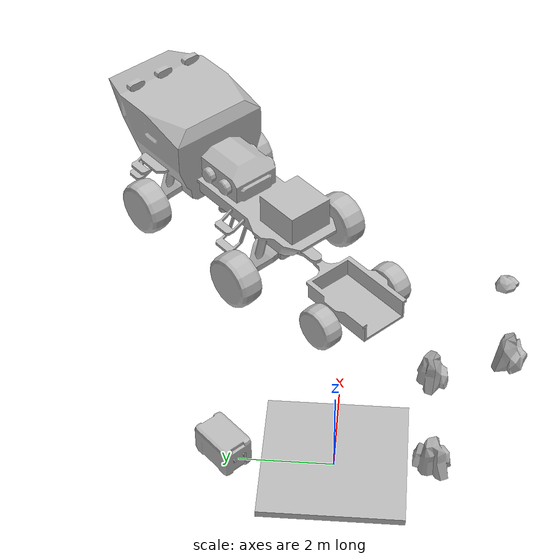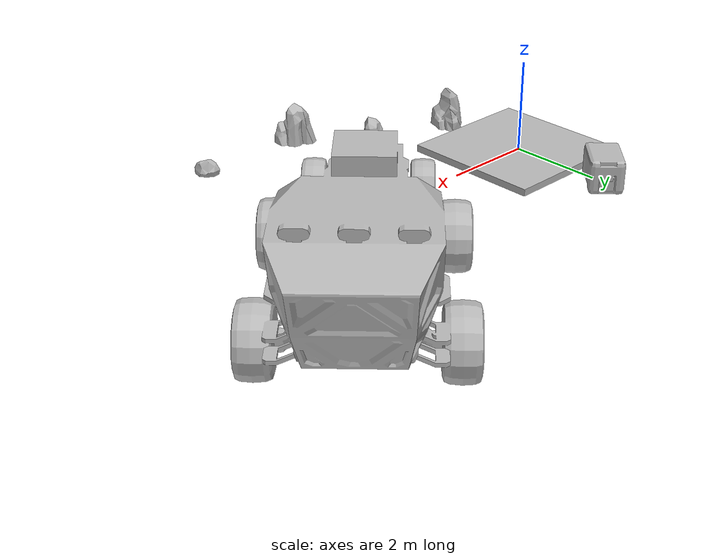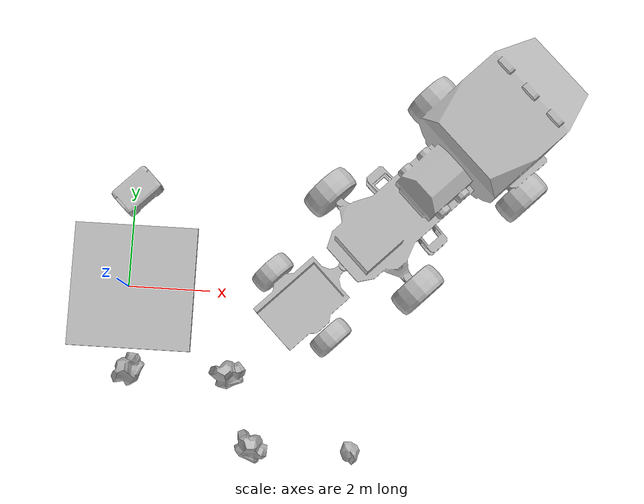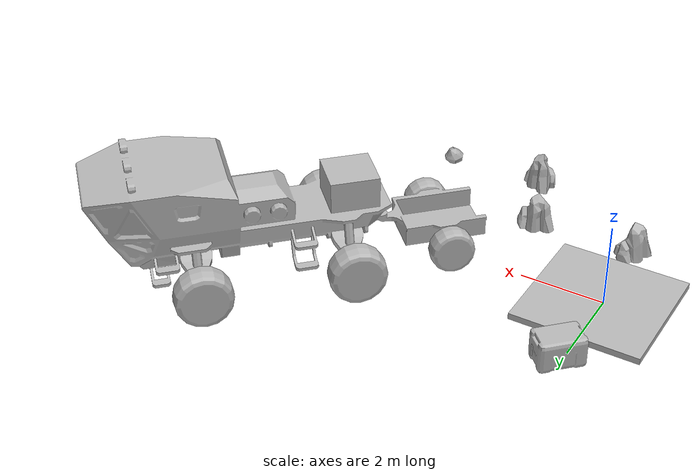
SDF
<sdf version="1.6">
 <world name="SRC_finals">
  <include>
   <name>walkway_1</name>
   <pose>0.09
      0
      -0.052151
      0
      0
      3.141592653589793</pose>
   <uri>model://walkway_finish_opposite</uri>
  </include>
  <include>
   <name>mars_crate_long_1</name>
   <pose>0.09000000000000037
      2.324
      0
      0
      0
      0.785398163397448</pose>
   <uri>model://mars_crate_long</uri>
  </include>
  <include>
   <name>mars_rock_2_2</name>
   <pose>0.08999999999999976
      -2.024
      0
      0
      0
      3.141592653589793</pose>
   <uri>model://mars_rock_2</uri>
  </include>
  <include>
   <pose>7.174345249867763
        2.642510423339463
        0
        0
        0
        2.356194490192345</pose>
   <uri>model://mars_explorer</uri>
  </include>
  <include>
   <name>mars_rock_2_3</name>
   <pose>2.561180609406726
      -1.9706542171215724
      0
      0
      0
      2.356194490192345</pose>
   <uri>model://mars_rock_2</uri>
  </include>
  <include>
   <name>mars_rock_1_4</name>
   <pose>5.6926596061476715
      -3.6803216187487324
      0
      0
      0
      -1.5707963267948968</pose>
   <uri>model://mars_rock_1</uri>
  </include>
  <include>
   <name>mars_rock_2_5</name>
   <pose>3.2686596061476707
      -3.6803216187487324
      0
      0
      0
      1.5707963267948968</pose>
   <uri>model://mars_rock_2</uri>
  </include>
 </world>
</sdf>
